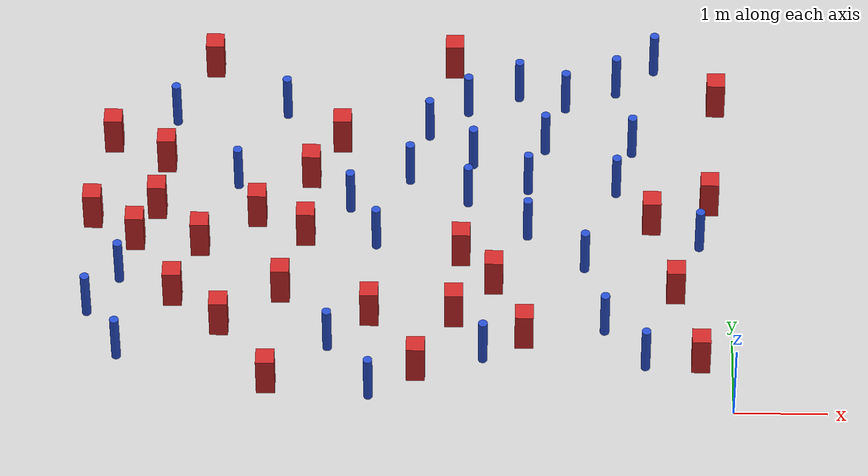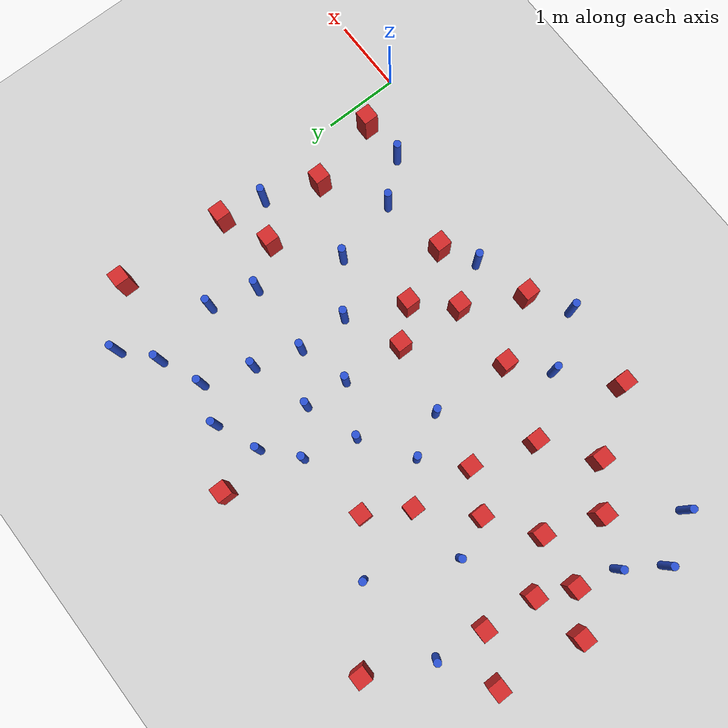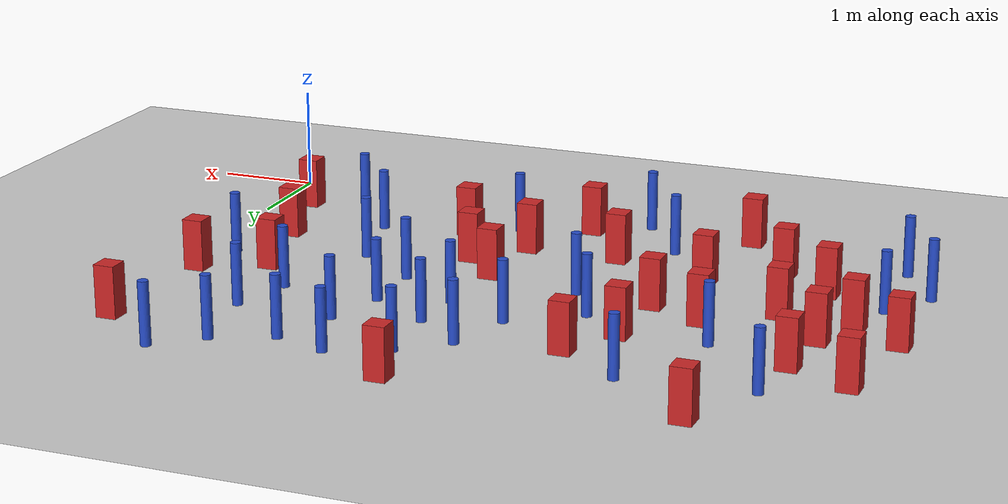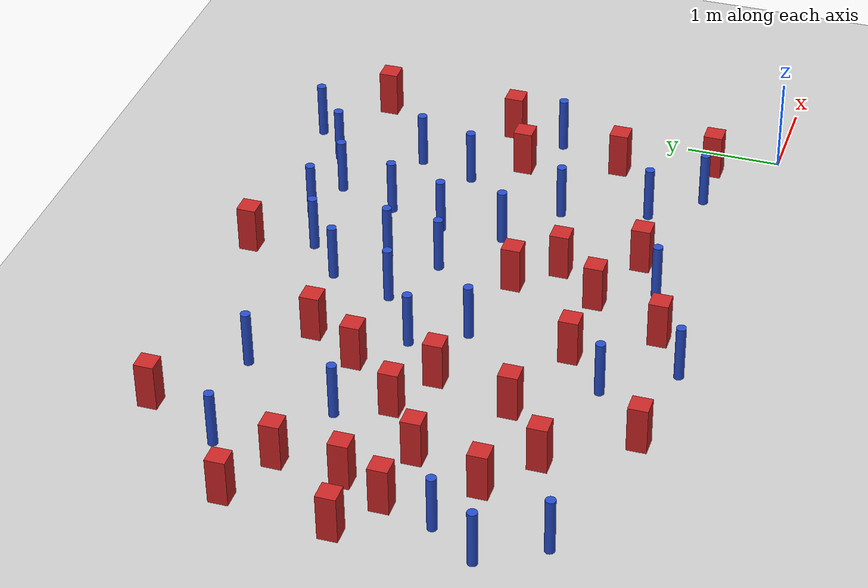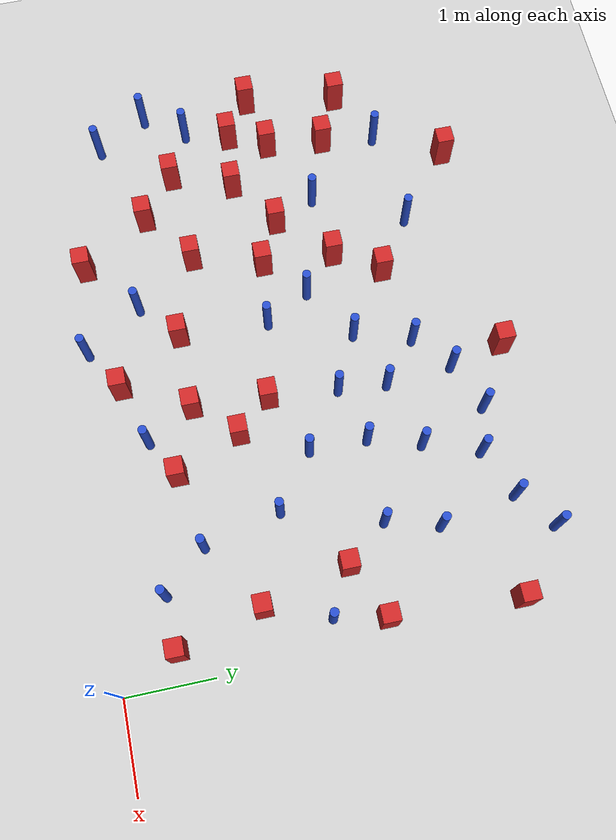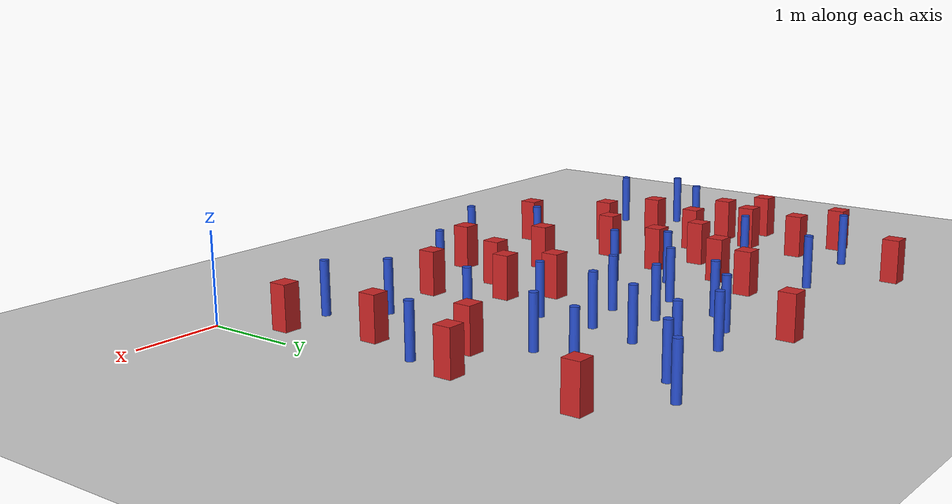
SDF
<sdf version="1.6">
 <world name="default">
  <model name="ground_plane">
   <static>1</static>
   <link name="link">
    <collision name="collision">
     <geometry><plane><normal>0 0 1</normal><size>100 100</size></plane></geometry>
     <surface><friction><ode><mu>100</mu><mu2>50</mu2></ode></friction></surface>
    </collision>
    <visual name="visual">
     <cast_shadows>0</cast_shadows>
     <geometry><plane><normal>0 0 1</normal><size>100 100</size></plane></geometry>
     <material>
      <ambient>1.0 1.0 1.0 1.0</ambient>
      <diffuse>0.8 0.8 0.8 1.0</diffuse>
      <specular>0.01 0.01 0.01 1.000000</specular>
     </material>
    </visual>
   </link>
  </model>
  <model name="square_post_obstacle2">
   <static>true</static>
   <pose>-3.06288043602 4.92188417001 -6.11067671241e-07 -5.50515727128e-06 -8.79689657224e-07 2.37013304536e-05</pose>
   <link name="link">
    <pose>0 0 0.25 0 -0 0</pose>
    <inertial>
     <mass>100</mass>
     <inertia>
      <ixx>0.166667</ixx>
      <ixy>0</ixy>
      <ixz>0</ixz>
      <iyy>0.166667</iyy>
      <iyz>0</iyz>
      <izz>0.166667</izz>
     </inertia>
    </inertial>
    <collision name="collision"><geometry><box><size>.2 .2 .5</size></box></geometry></collision>
    <visual name="visual">
     <geometry><box><size>.2 .2 .5</size></box></geometry>
     <material>
      <script><name>Gazebo/Red</name><uri>file://media/materials/scripts/gazebo.material</uri></script>
     </material>
    </visual>
   </link>
  </model>
  <model name="square_post_obstacle6">
   <static>true</static>
   <pose>-4.61223961222 3.24359524675 -6.11067671241e-07 -5.50515727128e-06 -8.79689657224e-07 2.37013304536e-05</pose>
   <link name="link">
    <pose>0 0 0.25 0 -0 0</pose>
    <inertial>
     <mass>100</mass>
     <inertia>
      <ixx>0.166667</ixx>
      <ixy>0</ixy>
      <ixz>0</ixz>
      <iyy>0.166667</iyy>
      <iyz>0</iyz>
      <izz>0.166667</izz>
     </inertia>
    </inertial>
    <collision name="collision"><geometry><box><size>.2 .2 .5</size></box></geometry></collision>
    <visual name="visual">
     <geometry><box><size>.2 .2 .5</size></box></geometry>
     <material>
      <script><name>Gazebo/Red</name><uri>file://media/materials/scripts/gazebo.material</uri></script>
     </material>
    </visual>
   </link>
  </model>
  <model name="pole_obstacle5">
   <static>true</static>
   <pose>-6.98525939992 1.29050954882 -9.47619616065e-06 5.49618799738e-07 2.36310414071e-07 -1.55090534796e-07</pose>
   <link name="link">
    <pose>0 0 0.3 0 -0 0</pose>
    <inertial>
     <mass>1</mass>
     <inertia><ixx>0.145833</ixx><ixy>0</ixy><ixz>0</ixz><iyy>0.145833</iyy><iyz>0</iyz><izz>0.125</izz></inertia>
    </inertial>
    <collision name="collision">
     <geometry><cylinder><radius>0.05</radius><length>.6</length></cylinder></geometry>
    </collision>
    <visual name="visual">
     <geometry><cylinder><radius>0.05</radius><length>.6</length></cylinder></geometry>
     <material>
      <script><name>Gazebo/Blue</name><uri>file://media/materials/scripts/gazebo.material</uri></script>
     </material>
    </visual>
   </link>
  </model>
  <model name="square_post_obstacle13">
   <static>true</static>
   <pose>-6.06268483474 1.50484935282 -6.11067671241e-07 -5.50515727128e-06 -8.79689657224e-07 2.37013304536e-05</pose>
   <link name="link">
    <pose>0 0 0.25 0 -0 0</pose>
    <inertial>
     <mass>100</mass>
     <inertia>
      <ixx>0.166667</ixx>
      <ixy>0</ixy>
      <ixz>0</ixz>
      <iyy>0.166667</iyy>
      <iyz>0</iyz>
      <izz>0.166667</izz>
     </inertia>
    </inertial>
    <collision name="collision"><geometry><box><size>.2 .2 .5</size></box></geometry></collision>
    <visual name="visual">
     <geometry><box><size>.2 .2 .5</size></box></geometry>
     <material>
      <script><name>Gazebo/Red</name><uri>file://media/materials/scripts/gazebo.material</uri></script>
     </material>
    </visual>
   </link>
  </model>
  <model name="square_post_obstacle17">
   <static>true</static>
   <pose>-6.2163403999 3.44901654102 -6.11067671241e-07 -5.50515727128e-06 -8.79689657224e-07 2.37013304536e-05</pose>
   <link name="link">
    <pose>0 0 0.25 0 -0 0</pose>
    <inertial>
     <mass>100</mass>
     <inertia>
      <ixx>0.166667</ixx>
      <ixy>0</ixy>
      <ixz>0</ixz>
      <iyy>0.166667</iyy>
      <iyz>0</iyz>
      <izz>0.166667</izz>
     </inertia>
    </inertial>
    <collision name="collision"><geometry><box><size>.2 .2 .5</size></box></geometry></collision>
    <visual name="visual">
     <geometry><box><size>.2 .2 .5</size></box></geometry>
     <material>
      <script><name>Gazebo/Red</name><uri>file://media/materials/scripts/gazebo.material</uri></script>
     </material>
    </visual>
   </link>
  </model>
  <model name="pole_obstacle10">
   <static>true</static>
   <pose>-3.90631873218 0.167929496606 -9.47619616065e-06 5.49618799737e-07 2.36310414028e-07 -1.55090534821e-07</pose>
   <link name="link">
    <pose>0 0 0.3 0 -0 0</pose>
    <inertial>
     <mass>1</mass>
     <inertia><ixx>0.145833</ixx><ixy>0</ixy><ixz>0</ixz><iyy>0.145833</iyy><iyz>0</iyz><izz>0.125</izz></inertia>
    </inertial>
    <collision name="collision">
     <geometry><cylinder><radius>0.05</radius><length>.6</length></cylinder></geometry>
    </collision>
    <visual name="visual">
     <geometry><cylinder><radius>0.05</radius><length>.6</length></cylinder></geometry>
     <material>
      <script><name>Gazebo/Blue</name><uri>file://media/materials/scripts/gazebo.material</uri></script>
     </material>
    </visual>
   </link>
  </model>
  <model name="square_post_obstacle20">
   <static>true</static>
   <pose>-2.58422604013 1.72574476141 -6.11067671241e-07 -5.50515727128e-06 -8.79689657224e-07 2.37013304536e-05</pose>
   <link name="link">
    <pose>0 0 0.25 0 -0 0</pose>
    <inertial>
     <mass>100</mass>
     <inertia>
      <ixx>0.166667</ixx>
      <ixy>0</ixy>
      <ixz>0</ixz>
      <iyy>0.166667</iyy>
      <iyz>0</iyz>
      <izz>0.166667</izz>
     </inertia>
    </inertial>
    <collision name="collision"><geometry><box><size>.2 .2 .5</size></box></geometry></collision>
    <visual name="visual">
     <geometry><box><size>.2 .2 .5</size></box></geometry>
     <material>
      <script><name>Gazebo/Red</name><uri>file://media/materials/scripts/gazebo.material</uri></script>
     </material>
    </visual>
   </link>
  </model>
  <model name="pole_obstacle12">
   <static>true</static>
   <pose>-2.88061672198 2.94017404316 -9.47619616065e-06 5.49618799737e-07 2.36310414051e-07 -1.55090534807e-07</pose>
   <link name="link">
    <pose>0 0 0.3 0 -0 0</pose>
    <inertial>
     <mass>1</mass>
     <inertia><ixx>0.145833</ixx><ixy>0</ixy><ixz>0</ixz><iyy>0.145833</iyy><iyz>0</iyz><izz>0.125</izz></inertia>
    </inertial>
    <collision name="collision">
     <geometry><cylinder><radius>0.05</radius><length>.6</length></cylinder></geometry>
    </collision>
    <visual name="visual">
     <geometry><cylinder><radius>0.05</radius><length>.6</length></cylinder></geometry>
     <material>
      <script><name>Gazebo/Blue</name><uri>file://media/materials/scripts/gazebo.material</uri></script>
     </material>
    </visual>
   </link>
  </model>
  <model name="pole_obstacle13">
   <static>true</static>
   <pose>-3.87450248075 2.30627080145 -9.47619616065e-06 5.49618799737e-07 2.36310414051e-07 -1.55090534807e-07</pose>
   <link name="link">
    <pose>0 0 0.3 0 -0 0</pose>
    <inertial>
     <mass>1</mass>
     <inertia><ixx>0.145833</ixx><ixy>0</ixy><ixz>0</ixz><iyy>0.145833</iyy><iyz>0</iyz><izz>0.125</izz></inertia>
    </inertial>
    <collision name="collision">
     <geometry><cylinder><radius>0.05</radius><length>.6</length></cylinder></geometry>
    </collision>
    <visual name="visual">
     <geometry><cylinder><radius>0.05</radius><length>.6</length></cylinder></geometry>
     <material>
      <script><name>Gazebo/Blue</name><uri>file://media/materials/scripts/gazebo.material</uri></script>
     </material>
    </visual>
   </link>
  </model>
  <model name="square_post_obstacle25">
   <static>true</static>
   <pose>-4.28571706736 3.77909919323 -6.11067671241e-07 -5.50515727128e-06 -8.79689657224e-07 2.37013304536e-05</pose>
   <link name="link">
    <pose>0 0 0.25 0 -0 0</pose>
    <inertial>
     <mass>100</mass>
     <inertia>
      <ixx>0.166667</ixx>
      <ixy>0</ixy>
      <ixz>0</ixz>
      <iyy>0.166667</iyy>
      <iyz>0</iyz>
      <izz>0.166667</izz>
     </inertia>
    </inertial>
    <collision name="collision"><geometry><box><size>.2 .2 .5</size></box></geometry></collision>
    <visual name="visual">
     <geometry><box><size>.2 .2 .5</size></box></geometry>
     <material>
      <script><name>Gazebo/Red</name><uri>file://media/materials/scripts/gazebo.material</uri></script>
     </material>
    </visual>
   </link>
  </model>
  <model name="pole_obstacle20">
   <static>true</static>
   <pose>-1.59762505161 2.00187455495 -9.47619616065e-06 5.49618799737e-07 2.36310414052e-07 -1.55090534804e-07</pose>
   <link name="link">
    <pose>0 0 0.3 0 -0 0</pose>
    <inertial>
     <mass>1</mass>
     <inertia><ixx>0.145833</ixx><ixy>0</ixy><ixz>0</ixz><iyy>0.145833</iyy><iyz>0</iyz><izz>0.125</izz></inertia>
    </inertial>
    <collision name="collision">
     <geometry><cylinder><radius>0.05</radius><length>.6</length></cylinder></geometry>
    </collision>
    <visual name="visual">
     <geometry><cylinder><radius>0.05</radius><length>.6</length></cylinder></geometry>
     <material>
      <script><name>Gazebo/Blue</name><uri>file://media/materials/scripts/gazebo.material</uri></script>
     </material>
    </visual>
   </link>
  </model>
  <model name="pole_obstacle26">
   <static>true</static>
   <pose>-2.04090661566 3.72926928273 -9.4761961606e-06 5.49618799729e-07 2.36310414004e-07 -1.55090534822e-07</pose>
   <link name="link">
    <pose>0 0 0.3 0 -0 0</pose>
    <inertial>
     <mass>1</mass>
     <inertia><ixx>0.145833</ixx><ixy>0</ixy><ixz>0</ixz><iyy>0.145833</iyy><iyz>0</iyz><izz>0.125</izz></inertia>
    </inertial>
    <collision name="collision">
     <geometry><cylinder><radius>0.05</radius><length>.6</length></cylinder></geometry>
    </collision>
    <visual name="visual">
     <geometry><cylinder><radius>0.05</radius><length>.6</length></cylinder></geometry>
     <material>
      <script><name>Gazebo/Blue</name><uri>file://media/materials/scripts/gazebo.material</uri></script>
     </material>
    </visual>
   </link>
  </model>
  <model name="pole_obstacle27">
   <static>true</static>
   <pose>-0.940200602799 0.618048237417 -9.47619616065e-06 5.49618799737e-07 2.36310414058e-07 -1.55090534802e-07</pose>
   <link name="link">
    <pose>0 0 0.3 0 -0 0</pose>
    <inertial>
     <mass>1</mass>
     <inertia><ixx>0.145833</ixx><ixy>0</ixy><ixz>0</ixz><iyy>0.145833</iyy><iyz>0</iyz><izz>0.125</izz></inertia>
    </inertial>
    <collision name="collision">
     <geometry><cylinder><radius>0.05</radius><length>.6</length></cylinder></geometry>
    </collision>
    <visual name="visual">
     <geometry><cylinder><radius>0.05</radius><length>.6</length></cylinder></geometry>
     <material>
      <script><name>Gazebo/Blue</name><uri>file://media/materials/scripts/gazebo.material</uri></script>
     </material>
    </visual>
   </link>
  </model>
  <model name="pole_obstacle28">
   <static>true</static>
   <pose>-4.91080749671 4.22456878926 -9.47619616065e-06 5.49618799737e-07 2.36310414037e-07 -1.55090534814e-07</pose>
   <link name="link">
    <pose>0 0 0.3 0 -0 0</pose>
    <inertial>
     <mass>1</mass>
     <inertia><ixx>0.145833</ixx><ixy>0</ixy><ixz>0</ixz><iyy>0.145833</iyy><iyz>0</iyz><izz>0.125</izz></inertia>
    </inertial>
    <collision name="collision">
     <geometry><cylinder><radius>0.05</radius><length>.6</length></cylinder></geometry>
    </collision>
    <visual name="visual">
     <geometry><cylinder><radius>0.05</radius><length>.6</length></cylinder></geometry>
     <material>
      <script><name>Gazebo/Blue</name><uri>file://media/materials/scripts/gazebo.material</uri></script>
     </material>
    </visual>
   </link>
  </model>
  <model name="square_post_obstacle35">
   <static>true</static>
   <pose>-6.50755788549 2.29948826343 -6.11067671241e-07 -5.50515727128e-06 -8.79689657224e-07 2.37013304536e-05</pose>
   <link name="link">
    <pose>0 0 0.25 0 -0 0</pose>
    <inertial>
     <mass>100</mass>
     <inertia>
      <ixx>0.166667</ixx>
      <ixy>0</ixy>
      <ixz>0</ixz>
      <iyy>0.166667</iyy>
      <iyz>0</iyz>
      <izz>0.166667</izz>
     </inertia>
    </inertial>
    <collision name="collision"><geometry><box><size>.2 .2 .5</size></box></geometry></collision>
    <visual name="visual">
     <geometry><box><size>.2 .2 .5</size></box></geometry>
     <material>
      <script><name>Gazebo/Red</name><uri>file://media/materials/scripts/gazebo.material</uri></script>
     </material>
    </visual>
   </link>
  </model>
  <model name="pole_obstacle42">
   <static>true</static>
   <pose>-6.63228951628 0.683411686622 -9.47619616065e-06 5.49618799737e-07 2.36310414061e-07 -1.550905348e-07</pose>
   <link name="link">
    <pose>0 0 0.3 0 -0 0</pose>
    <inertial>
     <mass>1</mass>
     <inertia><ixx>0.145833</ixx><ixy>0</ixy><ixz>0</ixz><iyy>0.145833</iyy><iyz>0</iyz><izz>0.125</izz></inertia>
    </inertial>
    <collision name="collision">
     <geometry><cylinder><radius>0.05</radius><length>.6</length></cylinder></geometry>
    </collision>
    <visual name="visual">
     <geometry><cylinder><radius>0.05</radius><length>.6</length></cylinder></geometry>
     <material>
      <script><name>Gazebo/Blue</name><uri>file://media/materials/scripts/gazebo.material</uri></script>
     </material>
    </visual>
   </link>
  </model>
  <model name="pole_obstacle44">
   <static>true</static>
   <pose>-2.22345945983 2.46271368356 -9.47619616065e-06 5.49618799737e-07 2.36310414051e-07 -1.55090534807e-07</pose>
   <link name="link">
    <pose>0 0 0.3 0 -0 0</pose>
    <inertial>
     <mass>1</mass>
     <inertia><ixx>0.145833</ixx><ixy>0</ixy><ixz>0</ixz><iyy>0.145833</iyy><iyz>0</iyz><izz>0.125</izz></inertia>
    </inertial>
    <collision name="collision">
     <geometry><cylinder><radius>0.05</radius><length>.6</length></cylinder></geometry>
    </collision>
    <visual name="visual">
     <geometry><cylinder><radius>0.05</radius><length>.6</length></cylinder></geometry>
     <material>
      <script><name>Gazebo/Blue</name><uri>file://media/materials/scripts/gazebo.material</uri></script>
     </material>
    </visual>
   </link>
  </model>
  <model name="pole_obstacle47">
   <static>true</static>
   <pose>-1.82045376149 4.36221005949 -9.47619616065e-06 5.49618799737e-07 2.36310414061e-07 -1.550905348e-07</pose>
   <link name="link">
    <pose>0 0 0.3 0 -0 0</pose>
    <inertial>
     <mass>1</mass>
     <inertia><ixx>0.145833</ixx><ixy>0</ixy><ixz>0</ixz><iyy>0.145833</iyy><iyz>0</iyz><izz>0.125</izz></inertia>
    </inertial>
    <collision name="collision">
     <geometry><cylinder><radius>0.05</radius><length>.6</length></cylinder></geometry>
    </collision>
    <visual name="visual">
     <geometry><cylinder><radius>0.05</radius><length>.6</length></cylinder></geometry>
     <material>
      <script><name>Gazebo/Blue</name><uri>file://media/materials/scripts/gazebo.material</uri></script>
     </material>
    </visual>
   </link>
  </model>
  <model name="pole_obstacle49">
   <static>true</static>
   <pose>-6.1351378031 4.09936657458 -9.47619616065e-06 5.49618799737e-07 2.36310414037e-07 -1.55090534814e-07</pose>
   <link name="link">
    <pose>0 0 0.3 0 -0 0</pose>
    <inertial>
     <mass>1</mass>
     <inertia><ixx>0.145833</ixx><ixy>0</ixy><ixz>0</ixz><iyy>0.145833</iyy><iyz>0</iyz><izz>0.125</izz></inertia>
    </inertial>
    <collision name="collision">
     <geometry><cylinder><radius>0.05</radius><length>.6</length></cylinder></geometry>
    </collision>
    <visual name="visual">
     <geometry><cylinder><radius>0.05</radius><length>.6</length></cylinder></geometry>
     <material>
      <script><name>Gazebo/Blue</name><uri>file://media/materials/scripts/gazebo.material</uri></script>
     </material>
    </visual>
   </link>
  </model>
  <model name="square_post_obstacle50">
   <static>true</static>
   <pose>-4.64795259192 2.39455171729 -6.11067671241e-07 -5.50515727128e-06 -8.79689657224e-07 2.37013304536e-05</pose>
   <link name="link">
    <pose>0 0 0.25 0 -0 0</pose>
    <inertial>
     <mass>100</mass>
     <inertia>
      <ixx>0.166667</ixx>
      <ixy>0</ixy>
      <ixz>0</ixz>
      <iyy>0.166667</iyy>
      <iyz>0</iyz>
      <izz>0.166667</izz>
     </inertia>
    </inertial>
    <collision name="collision"><geometry><box><size>.2 .2 .5</size></box></geometry></collision>
    <visual name="visual">
     <geometry><box><size>.2 .2 .5</size></box></geometry>
     <material>
      <script><name>Gazebo/Red</name><uri>file://media/materials/scripts/gazebo.material</uri></script>
     </material>
    </visual>
   </link>
  </model>
  <model name="pole_obstacle55">
   <static>true</static>
   <pose>-1.25929397283 4.59794228111 -9.47619616065e-06 5.49618799737e-07 2.36310414061e-07 -1.550905348e-07</pose>
   <link name="link">
    <pose>0 0 0.3 0 -0 0</pose>
    <inertial>
     <mass>1</mass>
     <inertia><ixx>0.145833</ixx><ixy>0</ixy><ixz>0</ixz><iyy>0.145833</iyy><iyz>0</iyz><izz>0.125</izz></inertia>
    </inertial>
    <collision name="collision">
     <geometry><cylinder><radius>0.05</radius><length>.6</length></cylinder></geometry>
    </collision>
    <visual name="visual">
     <geometry><cylinder><radius>0.05</radius><length>.6</length></cylinder></geometry>
     <material>
      <script><name>Gazebo/Blue</name><uri>file://media/materials/scripts/gazebo.material</uri></script>
     </material>
    </visual>
   </link>
  </model>
  <model name="square_post_obstacle59">
   <static>true</static>
   <pose>-0.610203706948 1.6208886025 -6.11067671241e-07 -5.50515727128e-06 -8.79689657224e-07 2.37013304536e-05</pose>
   <link name="link">
    <pose>0 0 0.25 0 -0 0</pose>
    <inertial>
     <mass>100</mass>
     <inertia>
      <ixx>0.166667</ixx>
      <ixy>0</ixy>
      <ixz>0</ixz>
      <iyy>0.166667</iyy>
      <iyz>0</iyz>
      <izz>0.166667</izz>
     </inertia>
    </inertial>
    <collision name="collision"><geometry><box><size>.2 .2 .5</size></box></geometry></collision>
    <visual name="visual">
     <geometry><box><size>.2 .2 .5</size></box></geometry>
     <material>
      <script><name>Gazebo/Red</name><uri>file://media/materials/scripts/gazebo.material</uri></script>
     </material>
    </visual>
   </link>
  </model>
  <model name="square_post_obstacle60">
   <static>true</static>
   <pose>-2.94709092754 2.12969300774 -6.11067671241e-07 -5.50515727128e-06 -8.79689657224e-07 2.37013304536e-05</pose>
   <link name="link">
    <pose>0 0 0.25 0 -0 0</pose>
    <inertial>
     <mass>100</mass>
     <inertia>
      <ixx>0.166667</ixx>
      <ixy>0</ixy>
      <ixz>0</ixz>
      <iyy>0.166667</iyy>
      <iyz>0</iyz>
      <izz>0.166667</izz>
     </inertia>
    </inertial>
    <collision name="collision"><geometry><box><size>.2 .2 .5</size></box></geometry></collision>
    <visual name="visual">
     <geometry><box><size>.2 .2 .5</size></box></geometry>
     <material>
      <script><name>Gazebo/Red</name><uri>file://media/materials/scripts/gazebo.material</uri></script>
     </material>
    </visual>
   </link>
  </model>
  <model name="square_post_obstacle61">
   <static>true</static>
   <pose>-5.54304403563 1.09578686592 -6.11067671241e-07 -5.50515727128e-06 -8.79689657224e-07 2.37013304536e-05</pose>
   <link name="link">
    <pose>0 0 0.25 0 -0 0</pose>
    <inertial>
     <mass>100</mass>
     <inertia>
      <ixx>0.166667</ixx>
      <ixy>0</ixy>
      <ixz>0</ixz>
      <iyy>0.166667</iyy>
      <iyz>0</iyz>
      <izz>0.166667</izz>
     </inertia>
    </inertial>
    <collision name="collision"><geometry><box><size>.2 .2 .5</size></box></geometry></collision>
    <visual name="visual">
     <geometry><box><size>.2 .2 .5</size></box></geometry>
     <material>
      <script><name>Gazebo/Red</name><uri>file://media/materials/scripts/gazebo.material</uri></script>
     </material>
    </visual>
   </link>
  </model>
  <model name="pole_obstacle66">
   <static>true</static>
   <pose>-5.41516218513 3.16193450235 -9.47619616065e-06 5.49618799738e-07 2.36310414051e-07 -1.55090534805e-07</pose>
   <link name="link">
    <pose>0 0 0.3 0 -0 0</pose>
    <inertial>
     <mass>1</mass>
     <inertia><ixx>0.145833</ixx><ixy>0</ixy><ixz>0</ixz><iyy>0.145833</iyy><iyz>0</iyz><izz>0.125</izz></inertia>
    </inertial>
    <collision name="collision">
     <geometry><cylinder><radius>0.05</radius><length>.6</length></cylinder></geometry>
    </collision>
    <visual name="visual">
     <geometry><cylinder><radius>0.05</radius><length>.6</length></cylinder></geometry>
     <material>
      <script><name>Gazebo/Blue</name><uri>file://media/materials/scripts/gazebo.material</uri></script>
     </material>
    </visual>
   </link>
  </model>
  <model name="square_post_obstacle74">
   <static>true</static>
   <pose>-6.28925656393 2.75706711189 -6.11067671241e-07 -5.50515727128e-06 -8.79689657224e-07 2.37013304536e-05</pose>
   <link name="link">
    <pose>0 0 0.25 0 -0 0</pose>
    <inertial>
     <mass>100</mass>
     <inertia>
      <ixx>0.166667</ixx>
      <ixy>0</ixy>
      <ixz>0</ixz>
      <iyy>0.166667</iyy>
      <iyz>0</iyz>
      <izz>0.166667</izz>
     </inertia>
    </inertial>
    <collision name="collision"><geometry><box><size>.2 .2 .5</size></box></geometry></collision>
    <visual name="visual">
     <geometry><box><size>.2 .2 .5</size></box></geometry>
     <material>
      <script><name>Gazebo/Red</name><uri>file://media/materials/scripts/gazebo.material</uri></script>
     </material>
    </visual>
   </link>
  </model>
  <model name="pole_obstacle70">
   <static>true</static>
   <pose>-1.37924492169 1.11085471004 -9.47619616065e-06 5.49618799737e-07 2.36310414065e-07 -1.55090534798e-07</pose>
   <link name="link">
    <pose>0 0 0.3 0 -0 0</pose>
    <inertial>
     <mass>1</mass>
     <inertia><ixx>0.145833</ixx><ixy>0</ixy><ixz>0</ixz><iyy>0.145833</iyy><iyz>0</iyz><izz>0.125</izz></inertia>
    </inertial>
    <collision name="collision">
     <geometry><cylinder><radius>0.05</radius><length>.6</length></cylinder></geometry>
    </collision>
    <visual name="visual">
     <geometry><cylinder><radius>0.05</radius><length>.6</length></cylinder></geometry>
     <material>
      <script><name>Gazebo/Blue</name><uri>file://media/materials/scripts/gazebo.material</uri></script>
     </material>
    </visual>
   </link>
  </model>
  <model name="square_post_obstacle76">
   <static>true</static>
   <pose>-3.40611783915 0.489772723221 -6.11067671241e-07 -5.50515727128e-06 -8.79689657224e-07 2.37013304536e-05</pose>
   <link name="link">
    <pose>0 0 0.25 0 -0 0</pose>
    <inertial>
     <mass>100</mass>
     <inertia>
      <ixx>0.166667</ixx>
      <ixy>0</ixy>
      <ixz>0</ixz>
      <iyy>0.166667</iyy>
      <iyz>0</iyz>
      <izz>0.166667</izz>
     </inertia>
    </inertial>
    <collision name="collision"><geometry><box><size>.2 .2 .5</size></box></geometry></collision>
    <visual name="visual">
     <geometry><box><size>.2 .2 .5</size></box></geometry>
     <material>
      <script><name>Gazebo/Red</name><uri>file://media/materials/scripts/gazebo.material</uri></script>
     </material>
    </visual>
   </link>
  </model>
  <model name="pole_obstacle94">
   <static>true</static>
   <pose>-3.52453312024 3.26143631429 -9.47619616065e-06 5.49618799737e-07 2.36310414067e-07 -1.55090534797e-07</pose>
   <link name="link">
    <pose>0 0 0.3 0 -0 0</pose>
    <inertial>
     <mass>1</mass>
     <inertia><ixx>0.145833</ixx><ixy>0</ixy><ixz>0</ixz><iyy>0.145833</iyy><iyz>0</iyz><izz>0.125</izz></inertia>
    </inertial>
    <collision name="collision">
     <geometry><cylinder><radius>0.05</radius><length>.6</length></cylinder></geometry>
    </collision>
    <visual name="visual">
     <geometry><cylinder><radius>0.05</radius><length>.6</length></cylinder></geometry>
     <material>
      <script><name>Gazebo/Blue</name><uri>file://media/materials/scripts/gazebo.material</uri></script>
     </material>
    </visual>
   </link>
  </model>
  <model name="square_post_obstacle89">
   <static>true</static>
   <pose>-5.74161864877 4.89384683985 -6.11067671241e-07 -5.50515727128e-06 -8.79689657224e-07 2.37013304536e-05</pose>
   <link name="link">
    <pose>0 0 0.25 0 -0 0</pose>
    <inertial>
     <mass>100</mass>
     <inertia>
      <ixx>0.166667</ixx>
      <ixy>0</ixy>
      <ixz>0</ixz>
      <iyy>0.166667</iyy>
      <iyz>0</iyz>
      <izz>0.166667</izz>
     </inertia>
    </inertial>
    <collision name="collision"><geometry><box><size>.2 .2 .5</size></box></geometry></collision>
    <visual name="visual">
     <geometry><box><size>.2 .2 .5</size></box></geometry>
     <material>
      <script><name>Gazebo/Red</name><uri>file://media/materials/scripts/gazebo.material</uri></script>
     </material>
    </visual>
   </link>
  </model>
  <model name="pole_obstacle111">
   <static>true</static>
   <pose>-2.68835532994 0.699653246517 -9.47619616065e-06 5.49618799738e-07 2.36310414075e-07 -1.55090534793e-07</pose>
   <link name="link">
    <pose>0 0 0.3 0 -0 0</pose>
    <inertial>
     <mass>1</mass>
     <inertia><ixx>0.145833</ixx><ixy>0</ixy><ixz>0</ixz><iyy>0.145833</iyy><iyz>0</iyz><izz>0.125</izz></inertia>
    </inertial>
    <collision name="collision">
     <geometry><cylinder><radius>0.05</radius><length>.6</length></cylinder></geometry>
    </collision>
    <visual name="visual">
     <geometry><cylinder><radius>0.05</radius><length>.6</length></cylinder></geometry>
     <material>
      <script><name>Gazebo/Blue</name><uri>file://media/materials/scripts/gazebo.material</uri></script>
     </material>
    </visual>
   </link>
  </model>
  <model name="pole_obstacle113">
   <static>true</static>
   <pose>-4.16947121011 2.83604493008 -9.47619616065e-06 5.49618799738e-07 2.36310414051e-07 -1.55090534805e-07</pose>
   <link name="link">
    <pose>0 0 0.3 0 -0 0</pose>
    <inertial>
     <mass>1</mass>
     <inertia><ixx>0.145833</ixx><ixy>0</ixy><ixz>0</ixz><iyy>0.145833</iyy><iyz>0</iyz><izz>0.125</izz></inertia>
    </inertial>
    <collision name="collision">
     <geometry><cylinder><radius>0.05</radius><length>.6</length></cylinder></geometry>
    </collision>
    <visual name="visual">
     <geometry><cylinder><radius>0.05</radius><length>.6</length></cylinder></geometry>
     <material>
      <script><name>Gazebo/Blue</name><uri>file://media/materials/scripts/gazebo.material</uri></script>
     </material>
    </visual>
   </link>
  </model>
  <model name="pole_obstacle130">
   <static>true</static>
   <pose>-1.25571554614 3.10341626518 -9.47619616065e-06 5.49618799737e-07 2.36310414062e-07 -1.55090534798e-07</pose>
   <link name="link">
    <pose>0 0 0.3 0 -0 0</pose>
    <inertial>
     <mass>1</mass>
     <inertia><ixx>0.145833</ixx><ixy>0</ixy><ixz>0</ixz><iyy>0.145833</iyy><iyz>0</iyz><izz>0.125</izz></inertia>
    </inertial>
    <collision name="collision">
     <geometry><cylinder><radius>0.05</radius><length>.6</length></cylinder></geometry>
    </collision>
    <visual name="visual">
     <geometry><cylinder><radius>0.05</radius><length>.6</length></cylinder></geometry>
     <material>
      <script><name>Gazebo/Blue</name><uri>file://media/materials/scripts/gazebo.material</uri></script>
     </material>
    </visual>
   </link>
  </model>
  <model name="pole_obstacle134">
   <static>true</static>
   <pose>-6.65794039705 1.77216317126 -9.47619616065e-06 5.49618799738e-07 2.36310414071e-07 -1.55090534796e-07</pose>
   <link name="link">
    <pose>0 0 0.3 0 -0 0</pose>
    <inertial>
     <mass>1</mass>
     <inertia><ixx>0.145833</ixx><ixy>0</ixy><ixz>0</ixz><iyy>0.145833</iyy><iyz>0</iyz><izz>0.125</izz></inertia>
    </inertial>
    <collision name="collision">
     <geometry><cylinder><radius>0.05</radius><length>.6</length></cylinder></geometry>
    </collision>
    <visual name="visual">
     <geometry><cylinder><radius>0.05</radius><length>.6</length></cylinder></geometry>
     <material>
      <script><name>Gazebo/Blue</name><uri>file://media/materials/scripts/gazebo.material</uri></script>
     </material>
    </visual>
   </link>
  </model>
  <model name="square_post_obstacle121">
   <static>true</static>
   <pose>-0.236060207495 2.90371157966 -6.11067671241e-07 -5.50515727128e-06 -8.79689657224e-07 2.37013304536e-05</pose>
   <link name="link">
    <pose>0 0 0.25 0 -0 0</pose>
    <inertial>
     <mass>100</mass>
     <inertia>
      <ixx>0.166667</ixx>
      <ixy>0</ixy>
      <ixz>0</ixz>
      <iyy>0.166667</iyy>
      <iyz>0</iyz>
      <izz>0.166667</izz>
     </inertia>
    </inertial>
    <collision name="collision"><geometry><box><size>.2 .2 .5</size></box></geometry></collision>
    <visual name="visual">
     <geometry><box><size>.2 .2 .5</size></box></geometry>
     <material>
      <script><name>Gazebo/Red</name><uri>file://media/materials/scripts/gazebo.material</uri></script>
     </material>
    </visual>
   </link>
  </model>
  <model name="square_post_obstacle122">
   <static>true</static>
   <pose>-0.868598656513 2.61407807827 -6.11067671241e-07 -5.50515727128e-06 -8.79689657224e-07 2.37013304536e-05</pose>
   <link name="link">
    <pose>0 0 0.25 0 -0 0</pose>
    <inertial>
     <mass>100</mass>
     <inertia>
      <ixx>0.166667</ixx>
      <ixy>0</ixy>
      <ixz>0</ixz>
      <iyy>0.166667</iyy>
      <iyz>0</iyz>
      <izz>0.166667</izz>
     </inertia>
    </inertial>
    <collision name="collision"><geometry><box><size>.2 .2 .5</size></box></geometry></collision>
    <visual name="visual">
     <geometry><box><size>.2 .2 .5</size></box></geometry>
     <material>
      <script><name>Gazebo/Red</name><uri>file://media/materials/scripts/gazebo.material</uri></script>
     </material>
    </visual>
   </link>
  </model>
  <model name="pole_obstacle145">
   <static>true</static>
   <pose>-4.36607633955 0.839846046111 -9.47619616065e-06 5.49618799737e-07 2.36310414061e-07 -1.550905348e-07</pose>
   <link name="link">
    <pose>0 0 0.3 0 -0 0</pose>
    <inertial>
     <mass>1</mass>
     <inertia><ixx>0.145833</ixx><ixy>0</ixy><ixz>0</ixz><iyy>0.145833</iyy><iyz>0</iyz><izz>0.125</izz></inertia>
    </inertial>
    <collision name="collision">
     <geometry><cylinder><radius>0.05</radius><length>.6</length></cylinder></geometry>
    </collision>
    <visual name="visual">
     <geometry><cylinder><radius>0.05</radius><length>.6</length></cylinder></geometry>
     <material>
      <script><name>Gazebo/Blue</name><uri>file://media/materials/scripts/gazebo.material</uri></script>
     </material>
    </visual>
   </link>
  </model>
  <model name="square_post_obstacle147">
   <static>true</static>
   <pose>-5.18562259972 2.65817034578 -6.11067671241e-07 -5.50515727128e-06 -8.79689657224e-07 2.37013304536e-05</pose>
   <link name="link">
    <pose>0 0 0.25 0 -0 0</pose>
    <inertial>
     <mass>100</mass>
     <inertia>
      <ixx>0.166667</ixx>
      <ixy>0</ixy>
      <ixz>0</ixz>
      <iyy>0.166667</iyy>
      <iyz>0</iyz>
      <izz>0.166667</izz>
     </inertia>
    </inertial>
    <collision name="collision"><geometry><box><size>.2 .2 .5</size></box></geometry></collision>
    <visual name="visual">
     <geometry><box><size>.2 .2 .5</size></box></geometry>
     <material>
      <script><name>Gazebo/Red</name><uri>file://media/materials/scripts/gazebo.material</uri></script>
     </material>
    </visual>
   </link>
  </model>
  <model name="square_post_obstacle149">
   <static>true</static>
   <pose>-6.8180026596 3.73310523707 -6.11067671241e-07 -5.50515727128e-06 -8.79689657224e-07 2.37013304536e-05</pose>
   <link name="link">
    <pose>0 0 0.25 0 -0 0</pose>
    <inertial>
     <mass>100</mass>
     <inertia>
      <ixx>0.166667</ixx>
      <ixy>0</ixy>
      <ixz>0</ixz>
      <iyy>0.166667</iyy>
      <iyz>0</iyz>
      <izz>0.166667</izz>
     </inertia>
    </inertial>
    <collision name="collision"><geometry><box><size>.2 .2 .5</size></box></geometry></collision>
    <visual name="visual">
     <geometry><box><size>.2 .2 .5</size></box></geometry>
     <material>
      <script><name>Gazebo/Red</name><uri>file://media/materials/scripts/gazebo.material</uri></script>
     </material>
    </visual>
   </link>
  </model>
  <model name="square_post_obstacle156">
   <static>true</static>
   <pose>-4.89543450626 1.57126854769 -6.11067671241e-07 -5.50515727128e-06 -8.79689657224e-07 2.37013304536e-05</pose>
   <link name="link">
    <pose>0 0 0.25 0 -0 0</pose>
    <inertial>
     <mass>100</mass>
     <inertia>
      <ixx>0.166667</ixx>
      <ixy>0</ixy>
      <ixz>0</ixz>
      <iyy>0.166667</iyy>
      <iyz>0</iyz>
      <izz>0.166667</izz>
     </inertia>
    </inertial>
    <collision name="collision"><geometry><box><size>.2 .2 .5</size></box></geometry></collision>
    <visual name="visual">
     <geometry><box><size>.2 .2 .5</size></box></geometry>
     <material>
      <script><name>Gazebo/Red</name><uri>file://media/materials/scripts/gazebo.material</uri></script>
     </material>
    </visual>
   </link>
  </model>
  <model name="pole_obstacle166">
   <static>true</static>
   <pose>-2.33550875752 4.52271797866 -9.47619616065e-06 5.49618799738e-07 2.3631041406e-07 -1.55090534801e-07</pose>
   <link name="link">
    <pose>0 0 0.3 0 -0 0</pose>
    <inertial>
     <mass>1</mass>
     <inertia><ixx>0.145833</ixx><ixy>0</ixy><ixz>0</ixz><iyy>0.145833</iyy><iyz>0</iyz><izz>0.125</izz></inertia>
    </inertial>
    <collision name="collision">
     <geometry><cylinder><radius>0.05</radius><length>.6</length></cylinder></geometry>
    </collision>
    <visual name="visual">
     <geometry><cylinder><radius>0.05</radius><length>.6</length></cylinder></geometry>
     <material>
      <script><name>Gazebo/Blue</name><uri>file://media/materials/scripts/gazebo.material</uri></script>
     </material>
    </visual>
   </link>
  </model>
  <model name="square_post_obstacle159">
   <static>true</static>
   <pose>-3.01028824451 1.25365677623 -6.11067671241e-07 -5.50515727128e-06 -8.79689657224e-07 2.37013304536e-05</pose>
   <link name="link">
    <pose>0 0 0.25 0 -0 0</pose>
    <inertial>
     <mass>100</mass>
     <inertia>
      <ixx>0.166667</ixx>
      <ixy>0</ixy>
      <ixz>0</ixz>
      <iyy>0.166667</iyy>
      <iyz>0</iyz>
      <izz>0.166667</izz>
     </inertia>
    </inertial>
    <collision name="collision"><geometry><box><size>.2 .2 .5</size></box></geometry></collision>
    <visual name="visual">
     <geometry><box><size>.2 .2 .5</size></box></geometry>
     <material>
      <script><name>Gazebo/Red</name><uri>file://media/materials/scripts/gazebo.material</uri></script>
     </material>
    </visual>
   </link>
  </model>
  <model name="square_post_obstacle166">
   <static>true</static>
   <pose>-5.00622976633 0.286593173261 -6.11067671241e-07 -5.50515727128e-06 -8.79689657224e-07 2.37013304536e-05</pose>
   <link name="link">
    <pose>0 0 0.25 0 -0 0</pose>
    <inertial>
     <mass>100</mass>
     <inertia>
      <ixx>0.166667</ixx>
      <ixy>0</ixy>
      <ixz>0</ixz>
      <iyy>0.166667</iyy>
      <iyz>0</iyz>
      <izz>0.166667</izz>
     </inertia>
    </inertial>
    <collision name="collision"><geometry><box><size>.2 .2 .5</size></box></geometry></collision>
    <visual name="visual">
     <geometry><box><size>.2 .2 .5</size></box></geometry>
     <material>
      <script><name>Gazebo/Red</name><uri>file://media/materials/scripts/gazebo.material</uri></script>
     </material>
    </visual>
   </link>
  </model>
  <model name="square_post_obstacle169">
   <static>true</static>
   <pose>-0.347190262141 0.651008134789 -6.11067671241e-07 -5.50515727128e-06 -8.79689657224e-07 2.37013304536e-05</pose>
   <link name="link">
    <pose>0 0 0.25 0 -0 0</pose>
    <inertial>
     <mass>100</mass>
     <inertia>
      <ixx>0.166667</ixx>
      <ixy>0</ixy>
      <ixz>0</ixz>
      <iyy>0.166667</iyy>
      <iyz>0</iyz>
      <izz>0.166667</izz>
     </inertia>
    </inertial>
    <collision name="collision"><geometry><box><size>.2 .2 .5</size></box></geometry></collision>
    <visual name="visual">
     <geometry><box><size>.2 .2 .5</size></box></geometry>
     <material>
      <script><name>Gazebo/Red</name><uri>file://media/materials/scripts/gazebo.material</uri></script>
     </material>
    </visual>
   </link>
  </model>
  <model name="square_post_obstacle171">
   <static>true</static>
   <pose>-2.24809318649 0.960994433453 -6.11067671241e-07 -5.50515727128e-06 -8.79689657224e-07 2.37013304536e-05</pose>
   <link name="link">
    <pose>0 0 0.25 0 -0 0</pose>
    <inertial>
     <mass>100</mass>
     <inertia>
      <ixx>0.166667</ixx>
      <ixy>0</ixy>
      <ixz>0</ixz>
      <iyy>0.166667</iyy>
      <iyz>0</iyz>
      <izz>0.166667</izz>
     </inertia>
    </inertial>
    <collision name="collision"><geometry><box><size>.2 .2 .5</size></box></geometry></collision>
    <visual name="visual">
     <geometry><box><size>.2 .2 .5</size></box></geometry>
     <material>
      <script><name>Gazebo/Red</name><uri>file://media/materials/scripts/gazebo.material</uri></script>
     </material>
    </visual>
   </link>
  </model>
  <model name="pole_obstacle183">
   <static>true</static>
   <pose>-1.08193584192 3.70389227344 -9.47619616065e-06 5.49618799737e-07 2.36310414062e-07 -1.55090534798e-07</pose>
   <link name="link">
    <pose>0 0 0.3 0 -0 0</pose>
    <inertial>
     <mass>1</mass>
     <inertia><ixx>0.145833</ixx><ixy>0</ixy><ixz>0</ixz><iyy>0.145833</iyy><iyz>0</iyz><izz>0.125</izz></inertia>
    </inertial>
    <collision name="collision">
     <geometry><cylinder><radius>0.05</radius><length>.6</length></cylinder></geometry>
    </collision>
    <visual name="visual">
     <geometry><cylinder><radius>0.05</radius><length>.6</length></cylinder></geometry>
     <material>
      <script><name>Gazebo/Blue</name><uri>file://media/materials/scripts/gazebo.material</uri></script>
     </material>
    </visual>
   </link>
  </model>
  <model name="square_post_obstacle175">
   <static>true</static>
   <pose>-6.98821727888 2.61525875512 -6.11067671241e-07 -5.50515727128e-06 -8.79689657224e-07 2.37013304536e-05</pose>
   <link name="link">
    <pose>0 0 0.25 0 -0 0</pose>
    <inertial>
     <mass>100</mass>
     <inertia>
      <ixx>0.166667</ixx>
      <ixy>0</ixy>
      <ixz>0</ixz>
      <iyy>0.166667</iyy>
      <iyz>0</iyz>
      <izz>0.166667</izz>
     </inertia>
    </inertial>
    <collision name="collision"><geometry><box><size>.2 .2 .5</size></box></geometry></collision>
    <visual name="visual">
     <geometry><box><size>.2 .2 .5</size></box></geometry>
     <material>
      <script><name>Gazebo/Red</name><uri>file://media/materials/scripts/gazebo.material</uri></script>
     </material>
    </visual>
   </link>
  </model>
  <model name="square_post_obstacle178">
   <static>true</static>
   <pose>-5.79672669244 2.22718382696 -6.11067671241e-07 -5.50515727128e-06 -8.79689657224e-07 2.37013304536e-05</pose>
   <link name="link">
    <pose>0 0 0.25 0 -0 0</pose>
    <inertial>
     <mass>100</mass>
     <inertia>
      <ixx>0.166667</ixx>
      <ixy>0</ixy>
      <ixz>0</ixz>
      <iyy>0.166667</iyy>
      <iyz>0</iyz>
      <izz>0.166667</izz>
     </inertia>
    </inertial>
    <collision name="collision"><geometry><box><size>.2 .2 .5</size></box></geometry></collision>
    <visual name="visual">
     <geometry><box><size>.2 .2 .5</size></box></geometry>
     <material>
      <script><name>Gazebo/Red</name><uri>file://media/materials/scripts/gazebo.material</uri></script>
     </material>
    </visual>
   </link>
  </model>
  <model name="pole_obstacle188">
   <static>true</static>
   <pose>-0.835908296414 4.94636975497 -9.47619616065e-06 5.49618799737e-07 2.36310414065e-07 -1.55090534796e-07</pose>
   <link name="link">
    <pose>0 0 0.3 0 -0 0</pose>
    <inertial>
     <mass>1</mass>
     <inertia><ixx>0.145833</ixx><ixy>0</ixy><ixz>0</ixz><iyy>0.145833</iyy><iyz>0</iyz><izz>0.125</izz></inertia>
    </inertial>
    <collision name="collision">
     <geometry><cylinder><radius>0.05</radius><length>.6</length></cylinder></geometry>
    </collision>
    <visual name="visual">
     <geometry><cylinder><radius>0.05</radius><length>.6</length></cylinder></geometry>
     <material>
      <script><name>Gazebo/Blue</name><uri>file://media/materials/scripts/gazebo.material</uri></script>
     </material>
    </visual>
   </link>
  </model>
  <model name="pole_obstacle196">
   <static>true</static>
   <pose>-2.22385063415 3.13088365168 -9.47619616065e-06 5.49618799737e-07 2.36310414051e-07 -1.55090534807e-07</pose>
   <link name="link">
    <pose>0 0 0.3 0 -0 0</pose>
    <inertial>
     <mass>1</mass>
     <inertia><ixx>0.145833</ixx><ixy>0</ixy><ixz>0</ixz><iyy>0.145833</iyy><iyz>0</iyz><izz>0.125</izz></inertia>
    </inertial>
    <collision name="collision">
     <geometry><cylinder><radius>0.05</radius><length>.6</length></cylinder></geometry>
    </collision>
    <visual name="visual">
     <geometry><cylinder><radius>0.05</radius><length>.6</length></cylinder></geometry>
     <material>
      <script><name>Gazebo/Blue</name><uri>file://media/materials/scripts/gazebo.material</uri></script>
     </material>
    </visual>
   </link>
  </model>
  <model name="pole_obstacle200">
   <static>true</static>
   <pose>-0.346756135576 2.32988457245 -9.47619616065e-06 5.49618799738e-07 2.36310414065e-07 -1.55090534798e-07</pose>
   <link name="link">
    <pose>0 0 0.3 0 -0 0</pose>
    <inertial>
     <mass>1</mass>
     <inertia><ixx>0.145833</ixx><ixy>0</ixy><ixz>0</ixz><iyy>0.145833</iyy><iyz>0</iyz><izz>0.125</izz></inertia>
    </inertial>
    <collision name="collision">
     <geometry><cylinder><radius>0.05</radius><length>.6</length></cylinder></geometry>
    </collision>
    <visual name="visual">
     <geometry><cylinder><radius>0.05</radius><length>.6</length></cylinder></geometry>
     <material>
      <script><name>Gazebo/Blue</name><uri>file://media/materials/scripts/gazebo.material</uri></script>
     </material>
    </visual>
   </link>
  </model>
  <model name="pole_obstacle206">
   <static>true</static>
   <pose>-3.32355526733 3.92409039855 -9.47619616065e-06 5.49618799737e-07 2.36310414067e-07 -1.55090534797e-07</pose>
   <link name="link">
    <pose>0 0 0.3 0 -0 0</pose>
    <inertial>
     <mass>1</mass>
     <inertia><ixx>0.145833</ixx><ixy>0</ixy><ixz>0</ixz><iyy>0.145833</iyy><iyz>0</iyz><izz>0.125</izz></inertia>
    </inertial>
    <collision name="collision">
     <geometry><cylinder><radius>0.05</radius><length>.6</length></cylinder></geometry>
    </collision>
    <visual name="visual">
     <geometry><cylinder><radius>0.05</radius><length>.6</length></cylinder></geometry>
     <material>
      <script><name>Gazebo/Blue</name><uri>file://media/materials/scripts/gazebo.material</uri></script>
     </material>
    </visual>
   </link>
  </model>
  <model name="pole_obstacle210">
   <static>true</static>
   <pose>-2.89898302612 4.28791146777 -9.47619616065e-06 5.49618799738e-07 2.3631041406e-07 -1.55090534801e-07</pose>
   <link name="link">
    <pose>0 0 0.3 0 -0 0</pose>
    <inertial>
     <mass>1</mass>
     <inertia><ixx>0.145833</ixx><ixy>0</ixy><ixz>0</ixz><iyy>0.145833</iyy><iyz>0</iyz><izz>0.125</izz></inertia>
    </inertial>
    <collision name="collision">
     <geometry><cylinder><radius>0.05</radius><length>.6</length></cylinder></geometry>
    </collision>
    <visual name="visual">
     <geometry><cylinder><radius>0.05</radius><length>.6</length></cylinder></geometry>
     <material>
      <script><name>Gazebo/Blue</name><uri>file://media/materials/scripts/gazebo.material</uri></script>
     </material>
    </visual>
   </link>
  </model>
  <model name="pole_obstacle225">
   <static>true</static>
   <pose>-2.83232590685 3.50604570127 -9.47619616065e-06 5.49618799737e-07 2.36310414051e-07 -1.55090534807e-07</pose>
   <link name="link">
    <pose>0 0 0.3 0 -0 0</pose>
    <inertial>
     <mass>1</mass>
     <inertia><ixx>0.145833</ixx><ixy>0</ixy><ixz>0</ixz><iyy>0.145833</iyy><iyz>0</iyz><izz>0.125</izz></inertia>
    </inertial>
    <collision name="collision">
     <geometry><cylinder><radius>0.05</radius><length>.6</length></cylinder></geometry>
    </collision>
    <visual name="visual">
     <geometry><cylinder><radius>0.05</radius><length>.6</length></cylinder></geometry>
     <material>
      <script><name>Gazebo/Blue</name><uri>file://media/materials/scripts/gazebo.material</uri></script>
     </material>
    </visual>
   </link>
  </model>
  <model name="square_post_obstacle202">
   <static>true</static>
   <pose>-0.153715049797 4.38130997688 -6.11067671241e-07 -5.50515727128e-06 -8.79689657224e-07 2.37013304536e-05</pose>
   <link name="link">
    <pose>0 0 0.25 0 -0 0</pose>
    <inertial>
     <mass>100</mass>
     <inertia>
      <ixx>0.166667</ixx>
      <ixy>0</ixy>
      <ixz>0</ixz>
      <iyy>0.166667</iyy>
      <iyz>0</iyz>
      <izz>0.166667</izz>
     </inertia>
    </inertial>
    <collision name="collision"><geometry><box><size>.2 .2 .5</size></box></geometry></collision>
    <visual name="visual">
     <geometry><box><size>.2 .2 .5</size></box></geometry>
     <material>
      <script><name>Gazebo/Red</name><uri>file://media/materials/scripts/gazebo.material</uri></script>
     </material>
    </visual>
   </link>
  </model>
  <model name="square_post_obstacle214">
   <static>true</static>
   <pose>-3.9240300498 1.25472997688 -6.11067671241e-07 -5.50515727128e-06 -8.79689657224e-07 2.37013304536e-05</pose>
   <link name="link">
    <pose>0 0 0.25 0 -0 0</pose>
    <inertial>
     <mass>100</mass>
     <inertia>
      <ixx>0.166667</ixx>
      <ixy>0</ixy>
      <ixz>0</ixz>
      <iyy>0.166667</iyy>
      <iyz>0</iyz>
      <izz>0.166667</izz>
     </inertia>
    </inertial>
    <collision name="collision"><geometry><box><size>.2 .2 .5</size></box></geometry></collision>
    <visual name="visual">
     <geometry><box><size>.2 .2 .5</size></box></geometry>
     <material>
      <script><name>Gazebo/Red</name><uri>file://media/materials/scripts/gazebo.material</uri></script>
     </material>
    </visual>
   </link>
  </model>
 </world>
</sdf>
